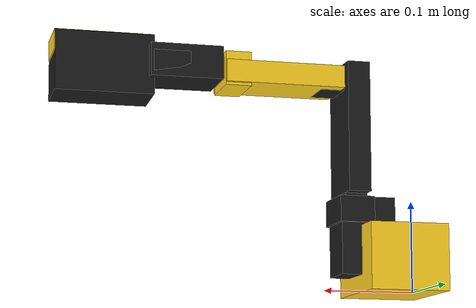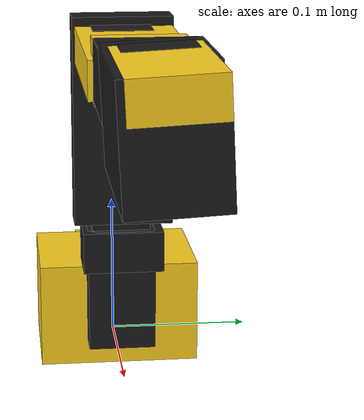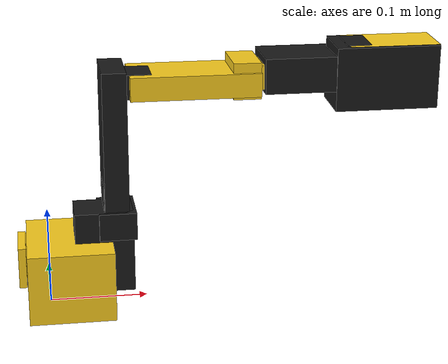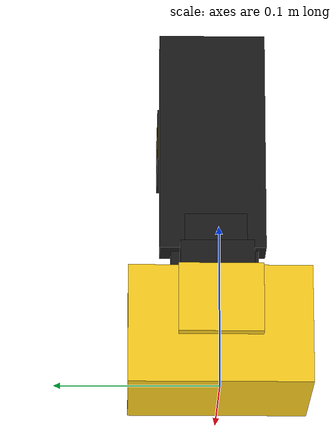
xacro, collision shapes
<?xml version="1.0" encoding="utf-8"?>
<robot name="so101" xmlns:xacro="http://www.ros.org/wiki/xacro">

  <xacro:arg name="prefix"      default="arm_"/>

  <xacro:arg name="mount_x"     default="0.0"/>
  <xacro:arg name="mount_y"     default="0.0"/>
  <xacro:arg name="mount_z"     default="0.0"/>
  <xacro:arg name="mount_roll"  default="0.0"/>
  <xacro:arg name="mount_pitch" default="0.0"/>
  <xacro:arg name="mount_yaw"   default="0.0"/>

  <!-- Set to false to omit the ros2_control block (plain display use). -->
  <xacro:arg name="use_ros2_control" default="true"/>
  <!-- Set to true for Gazebo Sim: selects the gz_ros2_control hardware plugin
       and embeds the Gazebo controller_manager plugin tag. -->
  <xacro:arg name="use_gazebo" default="false"/>

  <xacro:include filename="$(find so101_description)/urdf/so101_macro.xacro"/>
  <xacro:include filename="$(find so101_description)/urdf/so101.ros2_control.xacro"/>

  <link name="world"/>

  <xacro:so101 prefix="$(arg prefix)" parent="world">
    <origin xyz="$(arg mount_x) $(arg mount_y) $(arg mount_z)"
            rpy="$(arg mount_roll) $(arg mount_pitch) $(arg mount_yaw)"/>
  </xacro:so101>

  <xacro:if value="$(arg use_ros2_control)">
    <xacro:so101_ros2_control name="so101_arm"
                              prefix="$(arg prefix)"
                              use_gazebo="$(arg use_gazebo)"/>
  </xacro:if>

</robot>

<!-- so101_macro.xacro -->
<robot xmlns:xacro="http://www.ros.org/wiki/xacro">

  <xacro:macro name="so101" params="prefix parent *origin">

    <!-- `base_attach_joint`, not `mount_joint`: the drivebase already owns a
         joint called arm_mount_joint for the mounting plate itself, and URDF
         joint names must be globally unique. -->
    <joint name="${prefix}base_attach_joint" type="fixed">
      <parent link="${parent}"/>
      <child link="${prefix}base_link"/>
      <xacro:insert_block name="origin"/>
    </joint>
<material name="3d_printed">
    <color rgba="1.0 0.82 0.12 1.0" />
  </material>
  <material name="sts3215">
    <color rgba="0.1 0.1 0.1 1.0" />
  </material>

  <link name="${prefix}base_link">
    <inertial>
      <origin xyz="0.0137179 -5.19711e-05 0.0334843" rpy="0 0 0" />
      <mass value="0.147" />
      <inertia ixx="0.000114686" ixy="-4.59787e-07" ixz="4.97151e-06" iyy="0.000136117" iyz="9.75275e-08" izz="0.000130364" />
    </inertial>

    <visual>
      <origin xyz="-0.00636471 -9.94414e-05 -0.0024" rpy="1.5708 -1.67685e-15 1.5708" />
      <geometry>
        <mesh filename="package://so101_description/meshes/base_motor_holder_so101_v1.stl" />
      </geometry>
      <material name="3d_printed" />
    </visual>
    <collision>
      <origin xyz="0.0129355 0.00137435 0.0513999" rpy="1.5708 -1.67685e-15 1.5708" />
      <geometry>
        <box size="0.0476474 0.0314 0.0802" /></geometry>
    </collision>

    <visual>
      <origin xyz="-0.00636471 -8.97657e-09 -0.0024" rpy="1.5708 -2.78073e-29 1.5708" />
      <geometry>
        <mesh filename="package://so101_description/meshes/base_so101_v2.stl" />
      </geometry>
      <material name="3d_printed" />
    </visual>
    <collision>
      <origin xyz="0.0211354 9.20371e-08 0.0335999" rpy="1.5708 -2.78073e-29 1.5708" />
      <geometry>
        <box size="0.110925 0.072 0.087" /></geometry>
    </collision>

    <visual>
      <origin xyz="0.0263353 -8.97657e-09 0.0437" rpy="-8.21148e-16 7.84513e-18 1.249e-15" />
      <geometry>
        <mesh filename="package://so101_description/meshes/sts3215_03a_v1.stl" />
      </geometry>
      <material name="sts3215" />
    </visual>
    <collision>
      <origin xyz="0.0263353 -8.97657e-09 0.0441" rpy="-8.21148e-16 7.84513e-18 1.249e-15" />
      <geometry>
        <box size="0.0454 0.0248 0.0396" /></geometry>
    </collision>

    <visual>
      <origin xyz="-0.0309827 -0.000199441 0.0474" rpy="1.5708 -1.35493e-14 1.5708" />
      <geometry>
        <mesh filename="package://so101_description/meshes/waveshare_mounting_plate_so101_v2.stl" />
      </geometry>
      <material name="3d_printed" />
    </visual>
    <collision>
      <origin xyz="-0.0271827 -0.000199427 0.0474" rpy="1.5708 -1.35493e-14 1.5708" />
      <geometry>
        <box size="0.051 0.042 0.0076" /></geometry>
    </collision>
  </link>

  <link name="${prefix}shoulder_link">
    <inertial>
      <origin xyz="-0.0307604 -1.66727e-05 -0.0252713" rpy="0 0 0" />
      <mass value="0.100006" />
      <inertia ixx="8.3759e-05" ixy="7.55525e-08" ixz="-1.16342e-06" iyy="8.10403e-05" iyz="1.54663e-07" izz="2.39783e-05" />
    </inertial>

    <visual>
      <origin xyz="-0.0303992 0.000422241 -0.0417" rpy="1.5708 1.5708 0" />
      <geometry>
        <mesh filename="package://so101_description/meshes/sts3215_03a_v1.stl" />
      </geometry>
      <material name="sts3215" />
    </visual>
    <collision>
      <origin xyz="-0.0303992 2.22417e-05 -0.0417" rpy="1.5708 1.5708 0" />
      <geometry>
        <box size="0.0454 0.0248 0.0396" /></geometry>
    </collision>

    <visual>
      <origin xyz="-0.0675992 -0.000177759 0.0158499" rpy="1.5708 -1.5708 0" />
      <geometry>
        <mesh filename="package://so101_description/meshes/motor_holder_so101_base_v1.stl" />
      </geometry>
      <material name="3d_printed" />
    </visual>
    <collision>
      <origin xyz="-0.0315505 0.0011626 -0.0239999" rpy="1.5708 -1.5708 0" />
      <geometry>
        <box size="0.028 0.0380971 0.0550804" /></geometry>
    </collision>

    <visual>
      <origin xyz="0.0122008 2.22413e-05 0.0464" rpy="-1.5708 2.35221e-33 0" />
      <geometry>
        <mesh filename="package://so101_description/meshes/rotation_pitch_so101_v1.stl" />
      </geometry>
      <material name="3d_printed" />
    </visual>
    <collision>
      <origin xyz="-0.0176992 2.20859e-05 0.0041" rpy="-1.5708 2.35221e-33 0" />
      <geometry>
        <box size="0.0598 0.0842 0.046" /></geometry>
    </collision>
  </link>

  <link name="${prefix}upper_arm_link">
    <inertial>
      <origin xyz="-0.0898471 -0.00838224 0.0184089" rpy="0 0 0" />
      <mass value="0.103" />
      <inertia ixx="4.08002e-05" ixy="-1.97819e-05" ixz="-4.03016e-08" iyy="0.000147318" iyz="8.97326e-09" izz="0.000142487" />
    </inertial>

    <visual>
      <origin xyz="-0.11257 -0.0155 0.0187" rpy="-3.14159 -5.27356e-16 -1.5708" />
      <geometry>
        <mesh filename="package://so101_description/meshes/sts3215_03a_v1.stl" />
      </geometry>
      <material name="sts3215" />
    </visual>
    <collision>
      <origin xyz="-0.11257 -0.0155 0.0183" rpy="-3.14159 -5.27356e-16 -1.5708" />
      <geometry>
        <box size="0.0454 0.0248 0.0396" /></geometry>
    </collision>

    <visual>
      <origin xyz="-0.065085 0.012 0.0182" rpy="3.14159 -0 -1.30911e-30" />
      <geometry>
        <mesh filename="package://so101_description/meshes/upper_arm_so101_v1.stl" />
      </geometry>
      <material name="3d_printed" />
    </visual>
    <collision>
      <origin xyz="-0.059085 -0.000249995 0.02015" rpy="3.14159 -0 -1.30911e-30" />
      <geometry>
        <box size="0.14217 0.0245 0.0673" /></geometry>
    </collision>
  </link>

  <link name="${prefix}lower_arm_link">
    <inertial>
      <origin xyz="-0.0980701 0.00324376 0.0182831" rpy="0 0 0" />
      <mass value="0.104" />
      <inertia ixx="2.87438e-05" ixy="7.41152e-06" ixz="1.26409e-06" iyy="0.000159844" iyz="-4.90188e-08" izz="0.00014529" />
    </inertial>

    <visual>
      <origin xyz="-0.0648499 -0.032 0.0182" rpy="3.14159 -0 6.67202e-31" />
      <geometry>
        <mesh filename="package://so101_description/meshes/under_arm_so101_v1.stl" />
      </geometry>
      <material name="3d_printed" />
    </visual>
    <collision>
      <origin xyz="-0.0533499 4.96434e-09 0.0201999" rpy="3.14159 -0 6.67202e-31" />
      <geometry>
        <box size="0.1307 0.024 0.0644" /></geometry>
    </collision>

    <visual>
      <origin xyz="-0.0648499 -0.032 0.018" rpy="-3.14159 -2.55351e-15 -1.83387e-30" />
      <geometry>
        <mesh filename="package://so101_description/meshes/motor_holder_so101_wrist_v1.stl" />
      </geometry>
      <material name="3d_printed" />
    </visual>
    <collision>
      <origin xyz="-0.1047 0.00345 0.0199956" rpy="-3.14159 -2.55351e-15 -1.83387e-30" />
      <geometry>
        <box size="0.028 0.0369 0.056391" /></geometry>
    </collision>

    <visual>
      <origin xyz="-0.1224 0.0052 0.0187" rpy="-3.14159 -7.88861e-31 -3.14159" />
      <geometry>
        <mesh filename="package://so101_description/meshes/sts3215_03a_v1.stl" />
      </geometry>
      <material name="sts3215" />
    </visual>
    <collision>
      <origin xyz="-0.1224 0.0052 0.0183" rpy="-3.14159 -7.88861e-31 -3.14159" />
      <geometry>
        <box size="0.0454 0.0248 0.0396" /></geometry>
    </collision>
  </link>

  <link name="${prefix}wrist_link">
    <inertial>
      <origin xyz="-0.000103312 -0.0386143 0.0281156" rpy="0 0 0" />
      <mass value="0.079" />
      <inertia ixx="3.68263e-05" ixy="1.7893e-08" ixz="-5.28128e-08" iyy="2.5391e-05" iyz="3.6412e-06" izz="2.1e-05" />
    </inertial>

    <visual>
      <origin xyz="8.32667e-17 -0.0424 0.0306" rpy="1.5708 1.5708 0" />
      <geometry>
        <mesh filename="package://so101_description/meshes/sts3215_03a_no_horn_v1.stl" />
      </geometry>
      <material name="sts3215" />
    </visual>
    <collision>
      <origin xyz="-1.46928e-09 -0.0428 0.0306" rpy="1.5708 1.5708 0" />
      <geometry>
        <box size="0.0454 0.0248 0.0396" /></geometry>
    </collision>

    <visual>
      <origin xyz="0 -0.028 0.0181" rpy="-1.5708 -1.5708 0" />
      <geometry>
        <mesh filename="package://so101_description/meshes/wrist_roll_pitch_so101_v2.stl" />
      </geometry>
      <material name="3d_printed" />
    </visual>
    <collision>
      <origin xyz="-0.00217013 -0.0269153 0.02215" rpy="-1.5708 -1.5708 0" />
      <geometry>
        <box size="0.0623 0.0356598 0.0778261" /></geometry>
    </collision>
  </link>

  <link name="${prefix}gripper_link">
    <inertial>
      <origin xyz="0.000213627 0.000245138 -0.025187" rpy="0 0 0" />
      <mass value="0.087" />
      <inertia ixx="2.75087e-05" ixy="-3.35241e-07" ixz="-5.7352e-06" iyy="4.33657e-05" iyz="-5.17847e-08" izz="3.45059e-05" />
    </inertial>

    <visual>
      <origin xyz="0.0077 0.0001 -0.0234" rpy="-1.5708 -5.19179e-17 -1.66533e-16" />
      <geometry>
        <mesh filename="package://so101_description/meshes/sts3215_03a_v1.stl" />
      </geometry>
      <material name="sts3215" />
    </visual>
    <collision>
      <origin xyz="0.0077 0.000499999 -0.0234" rpy="-1.5708 -5.19179e-17 -1.66533e-16" />
      <geometry>
        <box size="0.0454 0.0248 0.0396" /></geometry>
    </collision>

    <visual>
      <origin xyz="8.32667e-17 -0.000218214 0.000949706" rpy="-3.14159 -5.55112e-17 0" />
      <geometry>
        <mesh filename="package://so101_description/meshes/wrist_roll_follower_so101_v1.stl" />
      </geometry>
      <material name="3d_printed" />
    </visual>
    <collision>
      <origin xyz="-0.0026 -0.00199986 -0.0517127" rpy="-3.14159 -5.55112e-17 0" />
      <geometry>
        <box size="0.0652 0.052 0.105425" /></geometry>
    </collision>
  </link>

  <link name="${prefix}gripper_frame_link">
    <origin xyz="0 0 0" rpy="0 -0 0" />
    <inertial>
      <origin xyz="0 0 0" rpy="0 0 0" />
      <mass value="1e-9" />
      <inertia ixx="0" ixy="0" ixz="0" iyy="0" iyz="0" izz="0" />
    </inertial>
  </link>

  <joint name="${prefix}gripper_frame_joint" type="fixed">
    <origin xyz="-0.0079 -0.000218121 -0.0981274" rpy="0 3.14159 0" />
    <parent link="${prefix}gripper_link" />
    <child link="${prefix}gripper_frame_link" />
    <axis xyz="0 0 0" />
  </joint>

  <link name="${prefix}moving_jaw_so101_v1_link">
    <inertial>
      <origin xyz="-0.00157495 -0.0300244 0.0192755" rpy="0 0 0" />
      <mass value="0.012" />
      <inertia ixx="6.61427e-06" ixy="-3.19807e-07" ixz="-5.90717e-09" iyy="1.89032e-06" iyz="-1.09945e-07" izz="5.28738e-06" />
    </inertial>

    <visual>
      <origin xyz="-5.55112e-17 -5.55112e-17 0.0189" rpy="9.53145e-17 6.93889e-18 1.24077e-24" />
      <geometry>
        <mesh filename="package://so101_description/meshes/moving_jaw_so101_v1.stl" />
      </geometry>
      <material name="3d_printed" />
    </visual>
    <collision>
      <origin xyz="-0.00115101 -0.0360027 0.0189" rpy="9.53145e-17 6.93889e-18 1.24077e-24" />
      <geometry>
        <box size="0.022298 0.0919947 0.048" /></geometry>
    </collision>
  </link>

  <joint name="${prefix}gripper" type="revolute">
    <origin xyz="0.0202 0.0188 -0.0234" rpy="1.5708 -5.24284e-08 -1.41553e-15" />
    <parent link="${prefix}gripper_link" />
    <child link="${prefix}moving_jaw_so101_v1_link" />
    <axis xyz="0 0 1" />
    <limit effort="10" velocity="10" lower="-0.174533" upper="1.74533" />
  </joint>

  <transmission name="gripper_trans">
    <type>transmission_interface/SimpleTransmission</type>
    <joint name="gripper">
      <hardwareInterface>hardware_interface/PositionJointInterface</hardwareInterface>
    </joint>
    <actuator name="motor6">
      <hardwareInterface>hardware_interface/PositionJointInterface</hardwareInterface>
      <mechanicalReduction>1</mechanicalReduction>
    </actuator>
  </transmission>

  <joint name="${prefix}wrist_roll" type="revolute">
    <origin xyz="5.55112e-17 -0.0611 0.0181" rpy="1.5708 0.0486795 3.14159" />
    <parent link="${prefix}wrist_link" />
    <child link="${prefix}gripper_link" />
    <axis xyz="0 0 1" />
    <limit effort="10" velocity="10" lower="-2.74385" upper="2.84121" />
  </joint>

  <transmission name="wrist_roll_trans">
    <type>transmission_interface/SimpleTransmission</type>
    <joint name="wrist_roll">
      <hardwareInterface>hardware_interface/PositionJointInterface</hardwareInterface>
    </joint>
    <actuator name="motor5">
      <hardwareInterface>hardware_interface/PositionJointInterface</hardwareInterface>
      <mechanicalReduction>1</mechanicalReduction>
    </actuator>
  </transmission>

  <joint name="${prefix}wrist_flex" type="revolute">
    <origin xyz="-0.1349 0.0052 3.62355e-17" rpy="4.02456e-15 8.67362e-16 -1.5708" />
    <parent link="${prefix}lower_arm_link" />
    <child link="${prefix}wrist_link" />
    <axis xyz="0 0 1" />
    <limit effort="10" velocity="10" lower="-1.65806" upper="1.65806" />
  </joint>

  <transmission name="wrist_flex_trans">
    <type>transmission_interface/SimpleTransmission</type>
    <joint name="wrist_flex">
      <hardwareInterface>hardware_interface/PositionJointInterface</hardwareInterface>
    </joint>
    <actuator name="motor4">
      <hardwareInterface>hardware_interface/PositionJointInterface</hardwareInterface>
      <mechanicalReduction>1</mechanicalReduction>
    </actuator>
  </transmission>

  <joint name="${prefix}elbow_flex" type="revolute">
    <origin xyz="-0.11257 -0.028 1.73763e-16" rpy="-3.63608e-16 8.74301e-16 1.5708" />
    <parent link="${prefix}upper_arm_link" />
    <child link="${prefix}lower_arm_link" />
    <axis xyz="0 0 1" />
    <limit effort="10" velocity="10" lower="-1.69" upper="1.69" />
  </joint>

  <transmission name="elbow_flex_trans">
    <type>transmission_interface/SimpleTransmission</type>
    <joint name="elbow_flex">
      <hardwareInterface>hardware_interface/PositionJointInterface</hardwareInterface>
    </joint>
    <actuator name="motor3">
      <hardwareInterface>hardware_interface/PositionJointInterface</hardwareInterface>
      <mechanicalReduction>1</mechanicalReduction>
    </actuator>
  </transmission>

  <joint name="${prefix}shoulder_lift" type="revolute">
    <origin xyz="-0.0303992 -0.0182778 -0.0542" rpy="-1.5708 -1.5708 0" />
    <parent link="${prefix}shoulder_link" />
    <child link="${prefix}upper_arm_link" />
    <axis xyz="0 0 1" />
    <limit effort="10" velocity="10" lower="-1.74533" upper="1.74533" />
  </joint>

  <transmission name="shoulder_lift_trans">
    <type>transmission_interface/SimpleTransmission</type>
    <joint name="shoulder_lift">
      <hardwareInterface>hardware_interface/PositionJointInterface</hardwareInterface>
    </joint>
    <actuator name="motor2">
      <hardwareInterface>hardware_interface/PositionJointInterface</hardwareInterface>
      <mechanicalReduction>1</mechanicalReduction>
    </actuator>
  </transmission>

  <joint name="${prefix}shoulder_pan" type="revolute">
    <origin xyz="0.0388353 -8.97657e-09 0.0624" rpy="3.14159 4.18253e-17 -3.14159" />
    <parent link="${prefix}base_link" />
    <child link="${prefix}shoulder_link" />
    <axis xyz="0 0 1" />
    <limit effort="10" velocity="10" lower="-1.91986" upper="1.91986" />
  </joint>

  <transmission name="shoulder_pan_trans">
    <type>transmission_interface/SimpleTransmission</type>
    <joint name="shoulder_pan">
      <hardwareInterface>hardware_interface/PositionJointInterface</hardwareInterface>
    </joint>
    <actuator name="motor1">
      <hardwareInterface>hardware_interface/PositionJointInterface</hardwareInterface>
      <mechanicalReduction>1</mechanicalReduction>
    </actuator>
  </transmission>

  </xacro:macro>
</robot>
